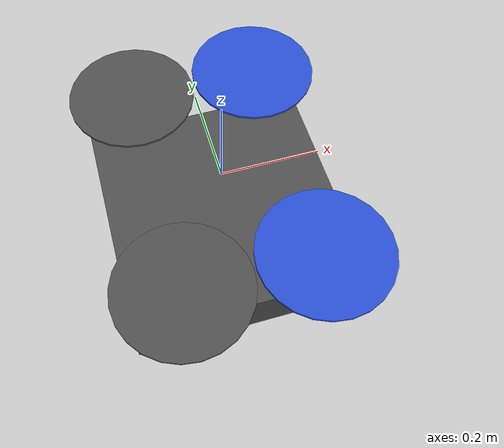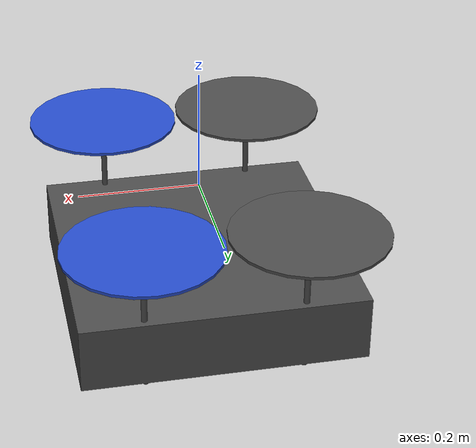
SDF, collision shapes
<!-- DO NOT EDIT: Generated from rocket_drone.sdf.jinja -->
<sdf version='1.6'>
  <model name='rocket_drone'>
    <link name='base_link'>
      <pose>0 0 0 0 0 0</pose>
      <inertial>
        <pose>0 0 0 0 0 0</pose>
        <mass>1.5</mass>
        <inertia>
          <ixx>0.029125</ixx>
          <ixy>0</ixy>
          <ixz>0</ixz>
          <iyy>0.029125</iyy>
          <iyz>0</iyz>
          <izz>0.055225</izz>
        </inertia>
      </inertial>
      <collision name='base_link_inertia_collision'>
        <!-- Box height is 0.11m, so -0.16 keeps its bottom at z=0 instead of intersecting terrain -->
        <pose>0 0 -0.16 0 0 0</pose>
        <geometry>
          <box>
            <size>0.47 0.47 0.11</size>
          </box>
        </geometry>
        <surface>
          <contact>
            <ode>
              <max_vel>100.0</max_vel>
              <min_depth>0.001</min_depth>
            </ode>
          </contact>
          <friction>
            <ode>
              <mu>1.0</mu>
              <mu2>1.0</mu2>
            </ode>
          </friction>
        </surface>
      </collision>
      <visual name='base_link_inertia_visual'>
        <pose>0 0 0 0 0 0</pose>
        <geometry>
          <mesh>
            <scale>0.001 0.001 0.001</scale>
            <uri>model://rocket_drone/meshes/rocket_drone.stl</uri>
          </mesh>
        </geometry>
        <material>
          <script>
            <name>Gazebo/DarkGrey</name>
            <uri>file://media/materials/scripts/gazebo.material</uri>
          </script>
        </material>
      </visual>
      <!-- Landing standoffs (4 legs at motor positions) -->
      <visual name='front_right_leg_visual'>
        <pose>0.13 -0.22 -0.125 0 0 0</pose>
        <geometry>
          <cylinder>
            <radius>0.005</radius>
            <length>0.20</length>
          </cylinder>
        </geometry>
        <material>
          <ambient>0.1 0.1 0.1 1</ambient>
          <diffuse>0.1 0.1 0.1 1</diffuse>
          <specular>0.01 0.01 0.01 1</specular>
        </material>
      </visual>
      <collision name='front_right_leg_collision'>
        <pose>0.13 -0.22 -0.125 0 0 0</pose>
        <geometry>
          <cylinder>
            <radius>0.005</radius>
            <length>0.20</length>
          </cylinder>
        </geometry>
        <surface>
          <contact>
            <ode>
              <max_vel>100.0</max_vel>
              <min_depth>0.001</min_depth>
            </ode>
          </contact>
          <friction>
            <ode>
              <mu>1.0</mu>
              <mu2>1.0</mu2>
            </ode>
          </friction>
        </surface>
      </collision>
      <visual name='rear_left_leg_visual'>
        <pose>-0.13 0.22 -0.125 0 0 0</pose>
        <geometry>
          <cylinder>
            <radius>0.005</radius>
            <length>0.20</length>
          </cylinder>
        </geometry>
        <material>
          <ambient>0.1 0.1 0.1 1</ambient>
          <diffuse>0.1 0.1 0.1 1</diffuse>
          <specular>0.01 0.01 0.01 1</specular>
        </material>
      </visual>
      <collision name='rear_left_leg_collision'>
        <pose>-0.13 0.22 -0.125 0 0 0</pose>
        <geometry>
          <cylinder>
            <radius>0.005</radius>
            <length>0.20</length>
          </cylinder>
        </geometry>
        <surface>
          <contact>
            <ode>
              <max_vel>100.0</max_vel>
              <min_depth>0.001</min_depth>
            </ode>
          </contact>
          <friction>
            <ode>
              <mu>1.0</mu>
              <mu2>1.0</mu2>
            </ode>
          </friction>
        </surface>
      </collision>
      <visual name='front_left_leg_visual'>
        <pose>0.13 0.22 -0.125 0 0 0</pose>
        <geometry>
          <cylinder>
            <radius>0.005</radius>
            <length>0.20</length>
          </cylinder>
        </geometry>
        <material>
          <ambient>0.1 0.1 0.1 1</ambient>
          <diffuse>0.1 0.1 0.1 1</diffuse>
          <specular>0.01 0.01 0.01 1</specular>
        </material>
      </visual>
      <collision name='front_left_leg_collision'>
        <pose>0.13 0.22 -0.125 0 0 0</pose>
        <geometry>
          <cylinder>
            <radius>0.005</radius>
            <length>0.20</length>
          </cylinder>
        </geometry>
        <surface>
          <contact>
            <ode>
              <max_vel>100.0</max_vel>
              <min_depth>0.001</min_depth>
            </ode>
          </contact>
          <friction>
            <ode>
              <mu>1.0</mu>
              <mu2>1.0</mu2>
            </ode>
          </friction>
        </surface>
      </collision>
      <visual name='rear_right_leg_visual'>
        <pose>-0.13 -0.22 -0.125 0 0 0</pose>
        <geometry>
          <cylinder>
            <radius>0.005</radius>
            <length>0.20</length>
          </cylinder>
        </geometry>
        <material>
          <ambient>0.1 0.1 0.1 1</ambient>
          <diffuse>0.1 0.1 0.1 1</diffuse>
          <specular>0.01 0.01 0.01 1</specular>
        </material>
      </visual>
      <collision name='rear_right_leg_collision'>
        <pose>-0.13 -0.22 -0.125 0 0 0</pose>
        <geometry>
          <cylinder>
            <radius>0.005</radius>
            <length>0.20</length>
          </cylinder>
        </geometry>
        <surface>
          <contact>
            <ode>
              <max_vel>100.0</max_vel>
              <min_depth>0.001</min_depth>
            </ode>
          </contact>
          <friction>
            <ode>
              <mu>1.0</mu>
              <mu2>1.0</mu2>
            </ode>
          </friction>
        </surface>
      </collision>
      <!-- FPV camera sensor (pointing vertically up) -->
      <sensor name='fpv_cam' type='camera'>
        <pose>0 0 0.262 0 -1.5708 0</pose>
        <camera>
          <horizontal_fov>2.0</horizontal_fov>
          <image>
            <width>640</width>
            <height>480</height>
          </image>
          <clip>
            <near>0.05</near>
            <far>15000</far>
          </clip>
        </camera>
        <always_on>1</always_on>
        <update_rate>30</update_rate>
        <visualize>1</visualize>
      </sensor>
      <!-- Chase camera sensor (third-person follow view) -->
      <sensor name='chase_cam' type='camera'>
        <pose>-1.5 0 0.8 0 0.5236 0</pose>
        <camera>
          <horizontal_fov>1.4</horizontal_fov>
          <image>
            <width>640</width>
            <height>480</height>
          </image>
          <clip>
            <near>0.1</near>
            <far>15000</far>
          </clip>
        </camera>
        <always_on>1</always_on>
        <update_rate>30</update_rate>
        <visualize>0</visualize>
      </sensor>
      <gravity>1</gravity>
    </link>
    <link name='imu_link'>
      <pose>0 0 0.02 0 0 0</pose>
      <inertial>
        <pose>0 0 0 0 0 0</pose>
        <mass>0.015</mass>
        <inertia>
          <ixx>1e-05</ixx>
          <ixy>0</ixy>
          <ixz>0</ixz>
          <iyy>1e-05</iyy>
          <iyz>0</iyz>
          <izz>1e-05</izz>
        </inertia>
      </inertial>
      <sensor name="imu_sensor" type="imu">
        <pose>0 0 0 3.141593 0 0</pose>
        <always_on>1</always_on>
        <update_rate>1000.0</update_rate>
      </sensor>
    </link>
    <joint name='imu_joint' type='revolute'>
      <child>imu_link</child>
      <parent>base_link</parent>
      <axis>
        <xyz>0 0 1</xyz>
        <limit>
          <lower>0</lower>
          <upper>0</upper>
          <effort>0</effort>
          <velocity>0</velocity>
        </limit>
        <dynamics>
          <damping>1.0</damping>
        </dynamics>
      </axis>
      <physics>
        <ode>
          <implicit_spring_damper>1</implicit_spring_damper>
        </ode>
      </physics>
    </joint>
    <link name='rotor_0'>
      <pose>0.13 -0.22 0.023 0 0 0</pose>
      <inertial>
        <pose>0 0 0 0 0 0</pose>
        <mass>0.005</mass>
        <inertia>
          <ixx>9.75e-07</ixx>
          <ixy>0</ixy>
          <ixz>0</ixz>
          <iyy>0.000273104</iyy>
          <iyz>0</iyz>
          <izz>0.000274004</izz>
        </inertia>
      </inertial>
      <collision name='rotor_0_collision'>
        <pose>0 0 0 0 0 0</pose>
        <geometry>
          <cylinder>
            <length>0.005</length>
            <radius>0.128</radius>
          </cylinder>
        </geometry>
        <surface>
          <contact>
            <ode/>
          </contact>
          <friction>
            <ode/>
          </friction>
        </surface>
      </collision>
      <visual name='rotor_0_visual'>
        <pose>0 0 0 0 0 0</pose>
        <geometry>
          <mesh>
            <scale>1 1 1</scale>
            <uri>model://rocket_drone/meshes/rocket_drone_prop_ccw.dae</uri>
          </mesh>
        </geometry>
        <material>
          <script>
            <name>Gazebo/Blue</name>
            <uri>file://media/materials/scripts/gazebo.material</uri>
          </script>
        </material>
      </visual>
      <gravity>1</gravity>
      <velocity_decay/>
    </link>
    <joint name='rotor_0_joint' type='revolute'>
      <child>rotor_0</child>
      <parent>base_link</parent>
      <axis>
        <xyz>0 0 1</xyz>
        <limit>
          <lower>-1e+16</lower>
          <upper>1e+16</upper>
        </limit>
        <dynamics>
          <damping>0.004</damping>
        </dynamics>
      </axis>
      <physics>
        <ode>
          <implicit_spring_damper>1</implicit_spring_damper>
        </ode>
      </physics>
    </joint>
    <link name='rotor_1'>
      <pose>-0.13 0.22 0.023 0 0 0</pose>
      <inertial>
        <pose>0 0 0 0 0 0</pose>
        <mass>0.005</mass>
        <inertia>
          <ixx>9.75e-07</ixx>
          <ixy>0</ixy>
          <ixz>0</ixz>
          <iyy>0.000273104</iyy>
          <iyz>0</iyz>
          <izz>0.000274004</izz>
        </inertia>
      </inertial>
      <collision name='rotor_1_collision'>
        <pose>0 0 0 0 0 0</pose>
        <geometry>
          <cylinder>
            <length>0.005</length>
            <radius>0.128</radius>
          </cylinder>
        </geometry>
        <surface>
          <contact>
            <ode/>
          </contact>
          <friction>
            <ode/>
          </friction>
        </surface>
      </collision>
      <visual name='rotor_1_visual'>
        <pose>0 0 0 0 0 0</pose>
        <geometry>
          <mesh>
            <scale>1 1 1</scale>
            <uri>model://rocket_drone/meshes/rocket_drone_prop_ccw.dae</uri>
          </mesh>
        </geometry>
        <material>
          <script>
            <name>Gazebo/DarkGrey</name>
            <uri>file://media/materials/scripts/gazebo.material</uri>
          </script>
        </material>
      </visual>
      <gravity>1</gravity>
      <velocity_decay/>
    </link>
    <joint name='rotor_1_joint' type='revolute'>
      <child>rotor_1</child>
      <parent>base_link</parent>
      <axis>
        <xyz>0 0 1</xyz>
        <limit>
          <lower>-1e+16</lower>
          <upper>1e+16</upper>
        </limit>
        <dynamics>
          <damping>0.004</damping>
        </dynamics>
      </axis>
      <physics>
        <ode>
          <implicit_spring_damper>1</implicit_spring_damper>
        </ode>
      </physics>
    </joint>
    <link name='rotor_2'>
      <pose>0.13 0.22 0.023 0 0 0</pose>
      <inertial>
        <pose>0 0 0 0 0 0</pose>
        <mass>0.005</mass>
        <inertia>
          <ixx>9.75e-07</ixx>
          <ixy>0</ixy>
          <ixz>0</ixz>
          <iyy>0.000273104</iyy>
          <iyz>0</iyz>
          <izz>0.000274004</izz>
        </inertia>
      </inertial>
      <collision name='rotor_2_collision'>
        <pose>0 0 0 0 0 0</pose>
        <geometry>
          <cylinder>
            <length>0.005</length>
            <radius>0.128</radius>
          </cylinder>
        </geometry>
        <surface>
          <contact>
            <ode/>
          </contact>
          <friction>
            <ode/>
          </friction>
        </surface>
      </collision>
      <visual name='rotor_2_visual'>
        <pose>0 0 0 0 0 0</pose>
        <geometry>
          <mesh>
            <scale>1 1 1</scale>
            <uri>model://rocket_drone/meshes/rocket_drone_prop_cw.dae</uri>
          </mesh>
        </geometry>
        <material>
          <script>
            <name>Gazebo/Blue</name>
            <uri>file://media/materials/scripts/gazebo.material</uri>
          </script>
        </material>
      </visual>
      <gravity>1</gravity>
      <velocity_decay/>
    </link>
    <joint name='rotor_2_joint' type='revolute'>
      <child>rotor_2</child>
      <parent>base_link</parent>
      <axis>
        <xyz>0 0 1</xyz>
        <limit>
          <lower>-1e+16</lower>
          <upper>1e+16</upper>
        </limit>
        <dynamics>
          <damping>0.004</damping>
        </dynamics>
      </axis>
      <physics>
        <ode>
          <implicit_spring_damper>1</implicit_spring_damper>
        </ode>
      </physics>
    </joint>
    <link name='rotor_3'>
      <pose>-0.13 -0.22 0.023 0 0 0</pose>
      <inertial>
        <pose>0 0 0 0 0 0</pose>
        <mass>0.005</mass>
        <inertia>
          <ixx>9.75e-07</ixx>
          <ixy>0</ixy>
          <ixz>0</ixz>
          <iyy>0.000273104</iyy>
          <iyz>0</iyz>
          <izz>0.000274004</izz>
        </inertia>
      </inertial>
      <collision name='rotor_3_collision'>
        <pose>0 0 0 0 0 0</pose>
        <geometry>
          <cylinder>
            <length>0.005</length>
            <radius>0.128</radius>
          </cylinder>
        </geometry>
        <surface>
          <contact>
            <ode/>
          </contact>
          <friction>
            <ode/>
          </friction>
        </surface>
      </collision>
      <visual name='rotor_3_visual'>
        <pose>0 0 0 0 0 0</pose>
        <geometry>
          <mesh>
            <scale>1 1 1</scale>
            <uri>model://rocket_drone/meshes/rocket_drone_prop_cw.dae</uri>
          </mesh>
        </geometry>
        <material>
          <script>
            <name>Gazebo/DarkGrey</name>
            <uri>file://media/materials/scripts/gazebo.material</uri>
          </script>
        </material>
      </visual>
      <gravity>1</gravity>
      <velocity_decay/>
    </link>
    <joint name='rotor_3_joint' type='revolute'>
      <child>rotor_3</child>
      <parent>base_link</parent>
      <axis>
        <xyz>0 0 1</xyz>
        <limit>
          <lower>-1e+16</lower>
          <upper>1e+16</upper>
        </limit>
        <dynamics>
          <damping>0.004</damping>
        </dynamics>
      </axis>
      <physics>
        <ode>
          <implicit_spring_damper>1</implicit_spring_damper>
        </ode>
      </physics>
    </joint>
    <!-- Lift/Drag plugins for rotor aerodynamics -->
    <plugin name="gz::sim::systems::LiftDrag" filename="gz-sim-lift-drag-system">
      <a0>0.075</a0>
      <alpha_stall>1.4</alpha_stall>
      <cla>0.2500</cla>
      <cda>0.004</cda>
      <cma>0.00</cma>
      <cla_stall>-0.025</cla_stall>
      <cda_stall>0.0</cda_stall>
      <cma_stall>0.0</cma_stall>
      <area>0.2</area>
      <air_density>1.2041</air_density>
      <cp>0.084 0 0</cp>
      <forward>0 1 0</forward>
      <upward>0 0 1</upward>
      <link_name>rotor_0</link_name>
    </plugin>
    <plugin name="gz::sim::systems::LiftDrag" filename="gz-sim-lift-drag-system">
      <a0>0.075</a0>
      <alpha_stall>1.4</alpha_stall>
      <cla>0.2500</cla>
      <cda>0.004</cda>
      <cma>0.00</cma>
      <cla_stall>-0.025</cla_stall>
      <cda_stall>0.0</cda_stall>
      <cma_stall>0.0</cma_stall>
      <area>0.2</area>
      <air_density>1.2041</air_density>
      <cp>-0.084 0 0</cp>
      <forward>0 -1 0</forward>
      <upward>0 0 1</upward>
      <link_name>rotor_0</link_name>
    </plugin>

    <plugin name="gz::sim::systems::LiftDrag" filename="gz-sim-lift-drag-system">
      <a0>0.075</a0>
      <alpha_stall>1.4</alpha_stall>
      <cla>0.2500</cla>
      <cda>0.004</cda>
      <cma>0.00</cma>
      <cla_stall>-0.025</cla_stall>
      <cda_stall>0.0</cda_stall>
      <cma_stall>0.0</cma_stall>
      <area>0.2</area>
      <air_density>1.2041</air_density>
      <cp>0.084 0 0</cp>
      <forward>0 1 0</forward>
      <upward>0 0 1</upward>
      <link_name>rotor_1</link_name>
    </plugin>
    <plugin name="gz::sim::systems::LiftDrag" filename="gz-sim-lift-drag-system">
      <a0>0.075</a0>
      <alpha_stall>1.4</alpha_stall>
      <cla>0.2500</cla>
      <cda>0.004</cda>
      <cma>0.00</cma>
      <cla_stall>-0.025</cla_stall>
      <cda_stall>0.0</cda_stall>
      <cma_stall>0.0</cma_stall>
      <area>0.2</area>
      <air_density>1.2041</air_density>
      <cp>-0.084 0 0</cp>
      <forward>0 -1 0</forward>
      <upward>0 0 1</upward>
      <link_name>rotor_1</link_name>
    </plugin>

    <plugin name="gz::sim::systems::LiftDrag" filename="gz-sim-lift-drag-system">
      <a0>0.075</a0>
      <alpha_stall>1.4</alpha_stall>
      <cla>0.2500</cla>
      <cda>0.004</cda>
      <cma>0.00</cma>
      <cla_stall>-0.025</cla_stall>
      <cda_stall>0.0</cda_stall>
      <cma_stall>0.0</cma_stall>
      <area>0.2</area>
      <air_density>1.2041</air_density>
      <cp>0.084 0 0</cp>
      <forward>0 -1 0</forward>
      <upward>0 0 1</upward>
      <link_name>rotor_2</link_name>
    </plugin>
    <plugin name="gz::sim::systems::LiftDrag" filename="gz-sim-lift-drag-system">
      <a0>0.075</a0>
      <alpha_stall>1.4</alpha_stall>
      <cla>0.2500</cla>
      <cda>0.004</cda>
      <cma>0.00</cma>
      <cla_stall>-0.025</cla_stall>
      <cda_stall>0.0</cda_stall>
      <cma_stall>0.0</cma_stall>
      <area>0.2</area>
      <air_density>1.2041</air_density>
      <cp>-0.084 0 0</cp>
      <forward>0 1 0</forward>
      <upward>0 0 1</upward>
      <link_name>rotor_2</link_name>
    </plugin>

    <plugin name="gz::sim::systems::LiftDrag" filename="gz-sim-lift-drag-system">
      <a0>0.075</a0>
      <alpha_stall>1.4</alpha_stall>
      <cla>0.2500</cla>
      <cda>0.004</cda>
      <cma>0.00</cma>
      <cla_stall>-0.025</cla_stall>
      <cda_stall>0.0</cda_stall>
      <cma_stall>0.0</cma_stall>
      <area>0.2</area>
      <air_density>1.2041</air_density>
      <cp>0.084 0 0</cp>
      <forward>0 -1 0</forward>
      <upward>0 0 1</upward>
      <link_name>rotor_3</link_name>
    </plugin>
    <plugin name="gz::sim::systems::LiftDrag" filename="gz-sim-lift-drag-system">
      <a0>0.075</a0>
      <alpha_stall>1.4</alpha_stall>
      <cla>0.2500</cla>
      <cda>0.004</cda>
      <cma>0.00</cma>
      <cla_stall>-0.025</cla_stall>
      <cda_stall>0.0</cda_stall>
      <cma_stall>0.0</cma_stall>
      <area>0.2</area>
      <air_density>1.2041</air_density>
      <cp>-0.084 0 0</cp>
      <forward>0 1 0</forward>
      <upward>0 0 1</upward>
      <link_name>rotor_3</link_name>
    </plugin>

    <!-- X-axis body drag (decelerates forward/backward motion) -->
    <plugin name="gz::sim::systems::LiftDrag" filename="gz-sim-lift-drag-system">
      <a0>0.0</a0>
      <alpha_stall>1.4</alpha_stall>
      <cla>0.0</cla>
      <cda>1.0</cda>
      <cma>0.0</cma>
      <cla_stall>0.0</cla_stall>
      <cda_stall>1.0</cda_stall>
      <cma_stall>0.0</cma_stall>
      <area>0.10</area>
      <air_density>1.2041</air_density>
      <cp>0 0 0</cp>
      <forward>1 0 0</forward>
      <upward>0 0 1</upward>
      <link_name>base_link</link_name>
    </plugin>
    <!-- Y-axis body drag (decelerates lateral motion) -->
    <plugin name="gz::sim::systems::LiftDrag" filename="gz-sim-lift-drag-system">
      <a0>0.0</a0>
      <alpha_stall>1.4</alpha_stall>
      <cla>0.0</cla>
      <cda>1.0</cda>
      <cma>0.0</cma>
      <cla_stall>0.0</cla_stall>
      <cda_stall>1.0</cda_stall>
      <cma_stall>0.0</cma_stall>
      <area>0.10</area>
      <air_density>1.2041</air_density>
      <cp>0 0 0</cp>
      <forward>0 1 0</forward>
      <upward>0 0 1</upward>
      <link_name>base_link</link_name>
    </plugin>
    <!-- Z-axis body drag (vertical damping) -->
    <plugin name="gz::sim::systems::LiftDrag" filename="gz-sim-lift-drag-system">
      <a0>0.0</a0>
      <alpha_stall>1.4</alpha_stall>
      <cla>0.0</cla>
      <cda>1.0</cda>
      <cma>0.0</cma>
      <cla_stall>0.0</cla_stall>
      <cda_stall>1.0</cda_stall>
      <cma_stall>0.0</cma_stall>
      <area>0.20</area>
      <air_density>1.2041</air_density>
      <cp>0 0 0</cp>
      <forward>0 0 1</forward>
      <upward>1 0 0</upward>
      <link_name>base_link</link_name>
    </plugin>

    <plugin name="gz::sim::systems::BetaflightPlugin" filename="BetaflightPlugin">
      <imuName>imu_sensor</imuName>
      <connectionTimeoutMaxCount>5</connectionTimeoutMaxCount>
      <!-- Motor mapping: SITL sends servo[0]=BF Motor 1 (FR), [1]=Motor 2 (RL), [2]=Motor 3 (FL), [3]=Motor 0 (RR) -->
      <rotor id="0">
        <vel_p_gain>0.01</vel_p_gain>
        <vel_i_gain>0</vel_i_gain>
        <vel_d_gain>0</vel_d_gain>
        <vel_i_max>0</vel_i_max>
        <vel_i_min>0</vel_i_min>
        <vel_cmd_max>2000.0</vel_cmd_max>
        <vel_cmd_min>-2000.0</vel_cmd_min>
        <jointName>rotor_0_joint</jointName>
        <turningDirection>ccw</turningDirection>
        <rotorVelocitySlowdownSim>1</rotorVelocitySlowdownSim>
      </rotor>
      <rotor id="1">
        <vel_p_gain>0.01</vel_p_gain>
        <vel_i_gain>0</vel_i_gain>
        <vel_d_gain>0</vel_d_gain>
        <vel_i_max>0</vel_i_max>
        <vel_i_min>0</vel_i_min>
        <vel_cmd_max>2000.0</vel_cmd_max>
        <vel_cmd_min>-2000.0</vel_cmd_min>
        <jointName>rotor_1_joint</jointName>
        <turningDirection>ccw</turningDirection>
        <rotorVelocitySlowdownSim>1</rotorVelocitySlowdownSim>
      </rotor>
      <rotor id="2">
        <vel_p_gain>0.01</vel_p_gain>
        <vel_i_gain>0</vel_i_gain>
        <vel_d_gain>0</vel_d_gain>
        <vel_i_max>0</vel_i_max>
        <vel_i_min>0</vel_i_min>
        <vel_cmd_max>2000.0</vel_cmd_max>
        <vel_cmd_min>-2000.0</vel_cmd_min>
        <jointName>rotor_2_joint</jointName>
        <turningDirection>cw</turningDirection>
        <rotorVelocitySlowdownSim>1</rotorVelocitySlowdownSim>
      </rotor>
      <rotor id="3">
        <vel_p_gain>0.01</vel_p_gain>
        <vel_i_gain>0</vel_i_gain>
        <vel_d_gain>0</vel_d_gain>
        <vel_i_max>0</vel_i_max>
        <vel_i_min>0</vel_i_min>
        <vel_cmd_max>2000.0</vel_cmd_max>
        <vel_cmd_min>-2000.0</vel_cmd_min>
        <jointName>rotor_3_joint</jointName>
        <turningDirection>cw</turningDirection>
        <rotorVelocitySlowdownSim>1</rotorVelocitySlowdownSim>
      </rotor>
    </plugin>

    <!-- Linear viscous drag — models low-speed prop-wash / H-force damping
         that quadratic LiftDrag plates cannot capture.  -->
    <plugin name="gz::sim::systems::ViscousDragPlugin"
            filename="ViscousDragPlugin">
      <link_name>base_link</link_name>
      <linear_damping>1.2</linear_damping>
      <angular_damping>0.09</angular_damping>
    </plugin>

    <static>0</static>
  </model>
</sdf>
